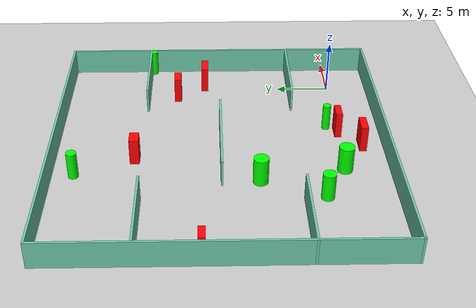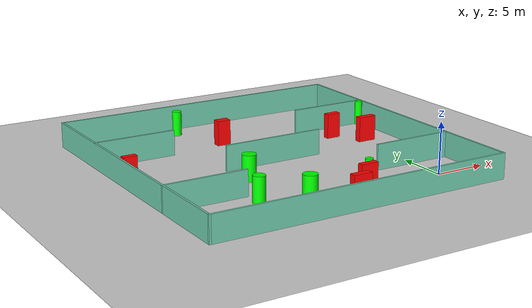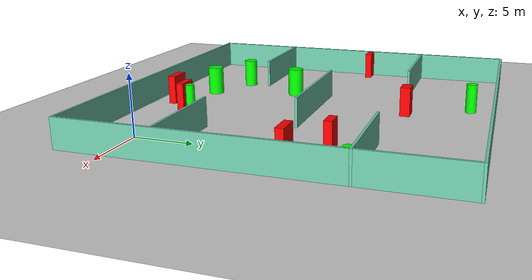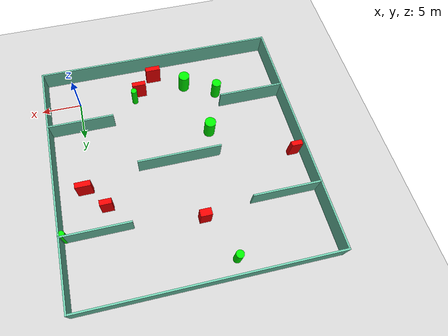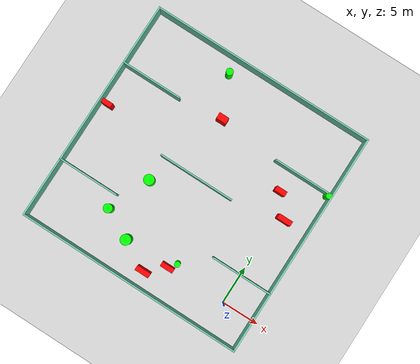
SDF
<sdf version="1.7">
 <world name="default">
  <light name="sun" type="directional">
   <pose>0 0 10 0 -0 0</pose>
   <diffuse>0.8 0.8 0.8 1</diffuse>
   <specular>0.2 0.2 0.2 1</specular>
   <attenuation>
    <range>1000</range>
    <constant>0.9</constant>
    <linear>0.01</linear>
    <quadratic>0.001</quadratic>
   </attenuation>
   <direction>-0.5 0.1 -0.9</direction>
   <spot><inner_angle>0</inner_angle><outer_angle>0</outer_angle><falloff>0</falloff></spot>
  </light>
  <model name="ground_plane">
   <static>1</static>
   <link name="link">
    <collision name="collision">
     <geometry><plane><normal>0 0 1</normal><size>100 100</size></plane></geometry>
     <surface>
      <contact><collide_bitmask>65535</collide_bitmask></contact>
      <friction><ode><mu>100</mu><mu2>50</mu2></ode></friction>
     </surface>
    </collision>
    <visual name="visual">
     <cast_shadows>0</cast_shadows>
     <geometry><plane><normal>0 0 1</normal><size>100 100</size></plane></geometry>
     <material>
      <script><uri>file://media/materials/scripts/gazebo.material</uri><name>Gazebo/Grey</name></script>
     </material>
    </visual>
   </link>
  </model>
  <gravity>0 0 -9.8</gravity>
  <magnetic_field>6e-06 2.3e-05 -4.2e-05</magnetic_field>
  <atmosphere type="adiabatic"/>
  <physics type="ode">
   <max_step_size>0.001</max_step_size>
   <real_time_factor>1</real_time_factor>
   <real_time_update_rate>1000</real_time_update_rate>
  </physics>
  <scene><ambient>0.4 0.4 0.4 1</ambient><background>0.7 0.7 0.7 1</background><shadows>1</shadows></scene>
  <spherical_coordinates>
   <surface_model>EARTH_WGS84</surface_model>
   <latitude_deg>0</latitude_deg>
   <longitude_deg>0</longitude_deg>
   <elevation>0</elevation>
   <heading_deg>0</heading_deg>
  </spherical_coordinates>
  <model name="my_base_walls">
   <link name="Wall_10">
    <collision name="Wall_10_Collision">
     <geometry><box><size>8.2 0.2 2.5</size></box></geometry>
     <pose>0 0 1.25 0 -0 0</pose>
    </collision>
    <visual name="Wall_10_Visual">
     <pose>0 0 1.25 0 -0 0</pose>
     <geometry><box><size>8.2 0.2 2.5</size></box></geometry>
     <material>
      <script><uri>file://media/materials/scripts/gazebo.material</uri><name>Gazebo/Grey</name></script>
      <ambient>0.435294 0.796078 0.67451 1</ambient>
     </material>
     <meta><layer>0</layer></meta>
    </visual>
    <pose>-11 -7 0 0 -0 0</pose>
   </link>
   <link name="Wall_12">
    <collision name="Wall_12_Collision">
     <geometry><box><size>8.2 0.2 2.5</size></box></geometry>
     <pose>0 0 1.25 0 -0 0</pose>
    </collision>
    <visual name="Wall_12_Visual">
     <pose>0 0 1.25 0 -0 0</pose>
     <geometry><box><size>8.2 0.2 2.5</size></box></geometry>
     <material>
      <script><uri>file://media/materials/scripts/gazebo.material</uri><name>Gazebo/Grey</name></script>
      <ambient>0.435294 0.796078 0.67451 1</ambient>
     </material>
     <meta><layer>0</layer></meta>
    </visual>
    <pose>-11 7 0 0 -0 0</pose>
   </link>
   <link name="Wall_14">
    <collision name="Wall_14_Collision">
     <geometry><box><size>8.2 0.2 2.5</size></box></geometry>
     <pose>0 0 1.25 0 -0 0</pose>
    </collision>
    <visual name="Wall_14_Visual">
     <pose>0 0 1.25 0 -0 0</pose>
     <geometry><box><size>8.2 0.2 2.5</size></box></geometry>
     <material>
      <script><uri>file://media/materials/scripts/gazebo.material</uri><name>Gazebo/Grey</name></script>
      <ambient>0.435294 0.796078 0.67451 1</ambient>
     </material>
     <meta><layer>0</layer></meta>
    </visual>
    <pose>11 7 0 0 -0 3.14159</pose>
   </link>
   <link name="Wall_16">
    <collision name="Wall_16_Collision">
     <geometry><box><size>10.2 0.2 2.5</size></box></geometry>
     <pose>0 0 1.25 0 -0 0</pose>
    </collision>
    <visual name="Wall_16_Visual">
     <pose>0 0 1.25 0 -0 0</pose>
     <geometry><box><size>10.2 0.2 2.5</size></box></geometry>
     <material>
      <script><uri>file://media/materials/scripts/gazebo.material</uri><name>Gazebo/Grey</name></script>
      <ambient>0.435294 0.796078 0.67451 1</ambient>
     </material>
     <meta><layer>0</layer></meta>
    </visual>
    <pose>0 0 0 0 -0 3.14159</pose>
   </link>
   <link name="Wall_2">
    <collision name="Wall_2_Collision">
     <geometry><box><size>30.2 0.2 2.5</size></box></geometry>
     <pose>0 0 1.25 0 -0 0</pose>
    </collision>
    <visual name="Wall_2_Visual">
     <pose>0 0 1.25 0 -0 0</pose>
     <geometry><box><size>30.2 0.2 2.5</size></box></geometry>
     <material>
      <script><uri>file://media/materials/scripts/gazebo.material</uri><name>Gazebo/Grey</name></script>
      <ambient>0.435294 0.796078 0.67451 1</ambient>
     </material>
     <meta><layer>0</layer></meta>
    </visual>
    <pose>0 -15 0 0 -0 3.14159</pose>
   </link>
   <link name="Wall_3">
    <collision name="Wall_3_Collision">
     <geometry><box><size>30.2 0.2 2.5</size></box></geometry>
     <pose>0 0 1.25 0 -0 0</pose>
    </collision>
    <visual name="Wall_3_Visual">
     <pose>0 0 1.25 0 -0 0</pose>
     <geometry><box><size>30.2 0.2 2.5</size></box></geometry>
     <material>
      <script><uri>file://media/materials/scripts/gazebo.material</uri><name>Gazebo/Grey</name></script>
      <ambient>0.435294 0.796078 0.67451 1</ambient>
     </material>
     <meta><layer>0</layer></meta>
    </visual>
    <pose>-15 0 0 0 -0 1.5708</pose>
   </link>
   <link name="Wall_4">
    <collision name="Wall_4_Collision">
     <geometry><box><size>30.2 0.2 2.5</size></box></geometry>
     <pose>0 0 1.25 0 -0 0</pose>
    </collision>
    <visual name="Wall_4_Visual">
     <pose>0 0 1.25 0 -0 0</pose>
     <geometry><box><size>30.2 0.2 2.5</size></box></geometry>
     <material>
      <script><uri>file://media/materials/scripts/gazebo.material</uri><name>Gazebo/Grey</name></script>
      <ambient>0.435294 0.796078 0.67451 1</ambient>
     </material>
     <meta><layer>0</layer></meta>
    </visual>
    <pose>0 15 0 0 -0 0</pose>
   </link>
   <link name="Wall_6">
    <collision name="Wall_6_Collision">
     <geometry><box><size>30.2 0.2 2.5</size></box></geometry>
     <pose>0 0 1.25 0 -0 0</pose>
    </collision>
    <visual name="Wall_6_Visual">
     <pose>0 0 1.25 0 -0 0</pose>
     <geometry><box><size>30.2 0.2 2.5</size></box></geometry>
     <material>
      <script><uri>file://media/materials/scripts/gazebo.material</uri><name>Gazebo/Grey</name></script>
      <ambient>0.435294 0.796078 0.67451 1</ambient>
     </material>
     <meta><layer>0</layer></meta>
    </visual>
    <pose>15 0 0 0 -0 1.5708</pose>
   </link>
   <link name="Wall_8">
    <collision name="Wall_8_Collision">
     <geometry><box><size>8.2 0.2 2.5</size></box></geometry>
     <pose>0 0 1.25 0 -0 0</pose>
    </collision>
    <visual name="Wall_8_Visual">
     <pose>0 0 1.25 0 -0 0</pose>
     <geometry><box><size>8.2 0.2 2.5</size></box></geometry>
     <material>
      <script><uri>file://media/materials/scripts/gazebo.material</uri><name>Gazebo/Grey</name></script>
      <ambient>0.435294 0.796078 0.67451 1</ambient>
     </material>
     <meta><layer>0</layer></meta>
    </visual>
    <pose>11 -7 0 0 -0 3.14159</pose>
   </link>
   <static>1</static>
   <pose>-11 11 0 0 -0 0</pose>
  </model>
  <model name="cylinder1">
   <static>1</static>
   <link name="link">
    <inertial>
     <mass>1</mass>
     <inertia><ixx>0.5</ixx><ixy>0</ixy><ixz>0</ixz><iyy>0.5</iyy><iyz>0</iyz><izz>1</izz></inertia>
    </inertial>
    <collision name="collision">
     <geometry><cylinder><radius>0.6910430415981588</radius><length>2.5</length></cylinder></geometry>
    </collision>
    <visual name="visual">
     <geometry><cylinder><radius>0.6910430415981588</radius><length>2.5</length></cylinder></geometry>
     <material>
      <ambient>0 1 0 1</ambient>
      <diffuse>0 1 0 1</diffuse>
      <specular>0.1 0.1 0.1 1</specular>
      <emissive>0 0 0 0</emissive>
     </material>
    </visual>
   </link>
   <pose>-14.046122945278501 0.09838803405999341 1.25 0 0 0</pose>
  </model>
  <model name="cylinder2">
   <static>1</static>
   <link name="link">
    <inertial>
     <mass>1</mass>
     <inertia><ixx>0.5</ixx><ixy>0</ixy><ixz>0</ixz><iyy>0.5</iyy><iyz>0</iyz><izz>1</izz></inertia>
    </inertial>
    <collision name="collision">
     <geometry><cylinder><radius>0.5814709422711752</radius><length>2.5</length></cylinder></geometry>
    </collision>
    <visual name="visual">
     <geometry><cylinder><radius>0.5814709422711752</radius><length>2.5</length></cylinder></geometry>
     <material>
      <ambient>0 1 0 1</ambient>
      <diffuse>0 1 0 1</diffuse>
      <specular>0.1 0.1 0.1 1</specular>
      <emissive>0 0 0 0</emissive>
     </material>
    </visual>
   </link>
   <pose>-17.907077253145857 2.099191687499566 1.25 0 0 0</pose>
  </model>
  <model name="cylinder3">
   <static>1</static>
   <link name="link">
    <inertial>
     <mass>1</mass>
     <inertia><ixx>0.5</ixx><ixy>0</ixy><ixz>0</ixz><iyy>0.5</iyy><iyz>0</iyz><izz>1</izz></inertia>
    </inertial>
    <collision name="collision">
     <geometry><cylinder><radius>0.6843530343135578</radius><length>2.5</length></cylinder></geometry>
    </collision>
    <visual name="visual">
     <geometry><cylinder><radius>0.6843530343135578</radius><length>2.5</length></cylinder></geometry>
     <material>
      <ambient>0 1 0 1</ambient>
      <diffuse>0 1 0 1</diffuse>
      <specular>0.1 0.1 0.1 1</specular>
      <emissive>0 0 0 0</emissive>
     </material>
    </visual>
   </link>
   <pose>-15.618895869028822 7.646532491700384 1.25 0 0 0</pose>
  </model>
  <model name="cylinder4">
   <static>1</static>
   <link name="link">
    <inertial>
     <mass>1</mass>
     <inertia><ixx>0.5</ixx><ixy>0</ixy><ixz>0</ixz><iyy>0.5</iyy><iyz>0</iyz><izz>1</izz></inertia>
    </inertial>
    <collision name="collision">
     <geometry><cylinder><radius>0.375284197667185</radius><length>2.5</length></cylinder></geometry>
    </collision>
    <visual name="visual">
     <geometry><cylinder><radius>0.375284197667185</radius><length>2.5</length></cylinder></geometry>
     <material>
      <ambient>0 1 0 1</ambient>
      <diffuse>0 1 0 1</diffuse>
      <specular>0.1 0.1 0.1 1</specular>
      <emissive>0 0 0 0</emissive>
     </material>
    </visual>
   </link>
   <pose>-7.232792917474429 0.9856474376536712 1.25 0 0 0</pose>
  </model>
  <model name="cylinder5">
   <static>1</static>
   <link name="link">
    <inertial>
     <mass>1</mass>
     <inertia><ixx>0.5</ixx><ixy>0</ixy><ixz>0</ixz><iyy>0.5</iyy><iyz>0</iyz><izz>1</izz></inertia>
    </inertial>
    <collision name="collision">
     <geometry><cylinder><radius>0.46406606269041384</radius><length>2.5</length></cylinder></geometry>
    </collision>
    <visual name="visual">
     <geometry><cylinder><radius>0.46406606269041384</radius><length>2.5</length></cylinder></geometry>
     <material>
      <ambient>0 1 0 1</ambient>
      <diffuse>0 1 0 1</diffuse>
      <specular>0.1 0.1 0.1 1</specular>
      <emissive>0 0 0 0</emissive>
     </material>
    </visual>
   </link>
   <pose>-14.538294939000043 23.98258362834154 1.25 0 0 0</pose>
  </model>
  <model name="cylinder6">
   <static>1</static>
   <link name="link">
    <inertial>
     <mass>1</mass>
     <inertia><ixx>0.5</ixx><ixy>0</ixy><ixz>0</ixz><iyy>0.5</iyy><iyz>0</iyz><izz>1</izz></inertia>
    </inertial>
    <collision name="collision">
     <geometry><cylinder><radius>0.3869037924743065</radius><length>2.5</length></cylinder></geometry>
    </collision>
    <visual name="visual">
     <geometry><cylinder><radius>0.3869037924743065</radius><length>2.5</length></cylinder></geometry>
     <material>
      <ambient>0 1 0 1</ambient>
      <diffuse>0 1 0 1</diffuse>
      <specular>0.1 0.1 0.1 1</specular>
      <emissive>0 0 0 0</emissive>
     </material>
    </visual>
   </link>
   <pose>3.666018419091909 17.742622893616165 1.25 0 0 0</pose>
  </model>
  <model name="box1">
   <static>1</static>
   <link name="link">
    <inertial>
     <mass>1</mass>
     <inertia><ixx>0.083</ixx><ixy>0</ixy><ixz>0</ixz><iyy>0.083</iyy><iyz>0</iyz><izz>0.083</izz></inertia>
    </inertial>
    <collision name="collision">
     <geometry><box><size>1.7272192714799055 0.6010719154338515 2.5</size></box></geometry>
    </collision>
    <visual name="visual">
     <geometry><box><size>1.7272192714799055 0.6010719154338515 2.5</size></box></geometry>
     <material>
      <ambient>1 0 0 1</ambient>
      <diffuse>1 0 0 1</diffuse>
      <specular>0.1 0.1 0.1 1</specular>
      <emissive>0 0 0 0</emissive>
     </material>
    </visual>
    <sensor name="my_contact" type="contact">
     <contact><collision>box_collision</collision><topic>__default_topic__</topic></contact>
    </sensor>
   </link>
   <pose>-8.037163109353035 0.02493609482374426 1.25 0 0 0</pose>
  </model>
  <model name="box2">
   <static>1</static>
   <link name="link">
    <inertial>
     <mass>1</mass>
     <inertia><ixx>0.083</ixx><ixy>0</ixy><ixz>0</ixz><iyy>0.083</iyy><iyz>0</iyz><izz>0.083</izz></inertia>
    </inertial>
    <collision name="collision">
     <geometry><box><size>1.3516326169671604 0.8547770992912969 2.5</size></box></geometry>
    </collision>
    <visual name="visual">
     <geometry><box><size>1.3516326169671604 0.8547770992912969 2.5</size></box></geometry>
     <material>
      <ambient>1 0 0 1</ambient>
      <diffuse>1 0 0 1</diffuse>
      <specular>0.1 0.1 0.1 1</specular>
      <emissive>0 0 0 0</emissive>
     </material>
    </visual>
    <sensor name="my_contact" type="contact">
     <contact><collision>box_collision</collision><topic>__default_topic__</topic></contact>
    </sensor>
   </link>
   <pose>-12.18350010591439 18.739655224467484 1.25 0 0 0</pose>
  </model>
  <model name="box3">
   <static>1</static>
   <link name="link">
    <inertial>
     <mass>1</mass>
     <inertia><ixx>0.083</ixx><ixy>0</ixy><ixz>0</ixz><iyy>0.083</iyy><iyz>0</iyz><izz>0.083</izz></inertia>
    </inertial>
    <collision name="collision">
     <geometry><box><size>1.8774372748279946 0.6480868714640879 2.5</size></box></geometry>
    </collision>
    <visual name="visual">
     <geometry><box><size>1.8774372748279946 0.6480868714640879 2.5</size></box></geometry>
     <material>
      <ambient>1 0 0 1</ambient>
      <diffuse>1 0 0 1</diffuse>
      <specular>0.1 0.1 0.1 1</specular>
      <emissive>0 0 0 0</emissive>
     </material>
    </visual>
    <sensor name="my_contact" type="contact">
     <contact><collision>box_collision</collision><topic>__default_topic__</topic></contact>
    </sensor>
   </link>
   <pose>-10.242908514307377 -1.9749752746494118 1.25 0 0 0</pose>
  </model>
  <model name="box4">
   <static>1</static>
   <link name="link">
    <inertial>
     <mass>1</mass>
     <inertia><ixx>0.083</ixx><ixy>0</ixy><ixz>0</ixz><iyy>0.083</iyy><iyz>0</iyz><izz>0.083</izz></inertia>
    </inertial>
    <collision name="collision">
     <geometry><box><size>1.8704724203924545 0.6703425449458407 2.5</size></box></geometry>
    </collision>
    <visual name="visual">
     <geometry><box><size>1.8704724203924545 0.6703425449458407 2.5</size></box></geometry>
     <material>
      <ambient>1 0 0 1</ambient>
      <diffuse>1 0 0 1</diffuse>
      <specular>0.1 0.1 0.1 1</specular>
      <emissive>0 0 0 0</emissive>
     </material>
    </visual>
    <sensor name="my_contact" type="contact">
     <contact><collision>box_collision</collision><topic>__default_topic__</topic></contact>
    </sensor>
   </link>
   <pose>0.736599661244437 12.441302011277141 1.25 0 0 0</pose>
  </model>
  <model name="box5">
   <static>1</static>
   <link name="link">
    <inertial>
     <mass>1</mass>
     <inertia><ixx>0.083</ixx><ixy>0</ixy><ixz>0</ixz><iyy>0.083</iyy><iyz>0</iyz><izz>0.083</izz></inertia>
    </inertial>
    <collision name="collision">
     <geometry><box><size>1.3517191761977614 0.6028935464535075 2.5</size></box></geometry>
    </collision>
    <visual name="visual">
     <geometry><box><size>1.3517191761977614 0.6028935464535075 2.5</size></box></geometry>
     <material>
      <ambient>1 0 0 1</ambient>
      <diffuse>1 0 0 1</diffuse>
      <specular>0.1 0.1 0.1 1</specular>
      <emissive>0 0 0 0</emissive>
     </material>
    </visual>
    <sensor name="my_contact" type="contact">
     <contact><collision>box_collision</collision><topic>__default_topic__</topic></contact>
    </sensor>
   </link>
   <pose>-24.997735201819246 12.718491446628374 1.25 0 0 0</pose>
  </model>
  <model name="box6">
   <static>1</static>
   <link name="link">
    <inertial>
     <mass>1</mass>
     <inertia><ixx>0.083</ixx><ixy>0</ixy><ixz>0</ixz><iyy>0.083</iyy><iyz>0</iyz><izz>0.083</izz></inertia>
    </inertial>
    <collision name="collision">
     <geometry><box><size>1.4333945775001038 0.6592802696387237 2.5</size></box></geometry>
    </collision>
    <visual name="visual">
     <geometry><box><size>1.4333945775001038 0.6592802696387237 2.5</size></box></geometry>
     <material>
      <ambient>1 0 0 1</ambient>
      <diffuse>1 0 0 1</diffuse>
      <specular>0.1 0.1 0.1 1</specular>
      <emissive>0 0 0 0</emissive>
     </material>
    </visual>
    <sensor name="my_contact" type="contact">
     <contact><collision>box_collision</collision><topic>__default_topic__</topic></contact>
    </sensor>
   </link>
   <pose>-1.5080608103011244 15.112547183494172 1.25 0 0 0</pose>
  </model>
 </world>
</sdf>
